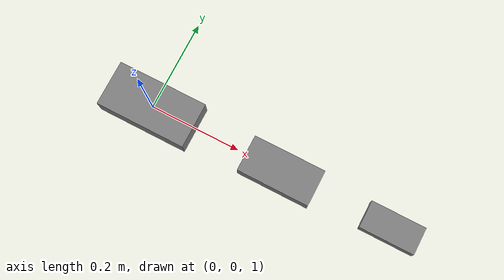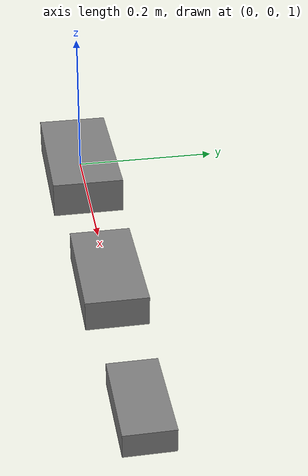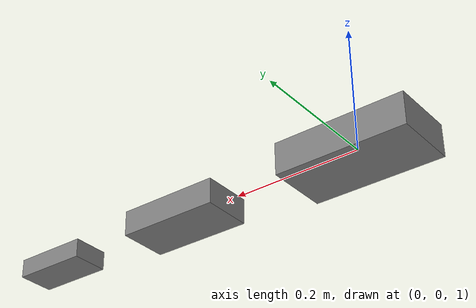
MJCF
<mujoco><option density="1.2" viscosity="0.001" integrator="implicit"/>
        <worldbody>
        <body name="b1" pos="0 0 1">
        <joint type="hinge" axis="0 1 0"/>
        <geom type="box" size="0.1 0.05 0.025" mass="1"/>
        <site name="s1" pos="0 0 0"/>
        <body name="b2" pos="0.3 0 0">
        <joint type="hinge" axis="0 1 0"/>
        <geom type="box" size="0.08 0.04 0.02" mass="0.5"/>
        <site name="s2" pos="0 0 0"/>
        <body name="b3" pos="0.25 0 0">
        <joint type="hinge" axis="0 1 0"/>
        <geom type="box" size="0.06 0.03 0.015" mass="0.3"/>
        <site name="s3" pos="0 0 0"/>
        </body></body></body></worldbody></mujoco>
